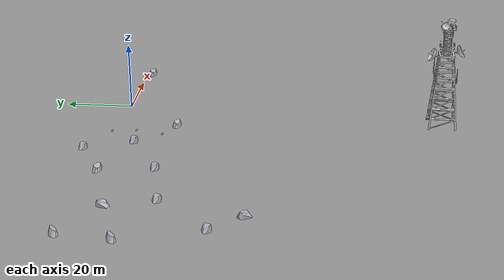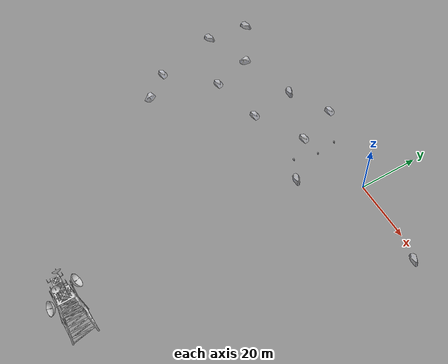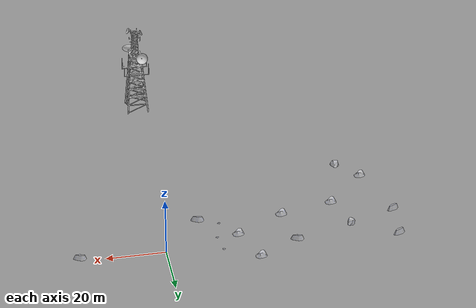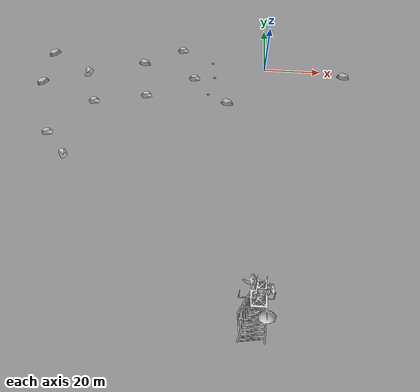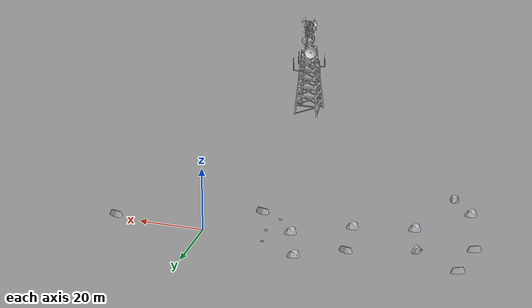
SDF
<sdf version="1.6">
 <world name="moon">
  <scene><background>0 0 0 255</background><ambient>0.4 0.4 0.4 1</ambient><shadows>1</shadows></scene>
  <include><uri>model://sun</uri></include>
  <physics name="default_physics" default="0" type="ode">
   <max_step_size>0.01</max_step_size>
   <real_time_factor>1</real_time_factor>
   <real_time_update_rate>100</real_time_update_rate>
  </physics>
  <gravity>0 0 -1.622</gravity>
  <magnetic_field>6e-06 2.3e-05 -4.2e-05</magnetic_field>
  <atmosphere type="adiabatic"/>
  <spherical_coordinates>
   <surface_model>EARTH_WGS84</surface_model>
   <latitude_deg>0</latitude_deg>
   <longitude_deg>0</longitude_deg>
   <elevation>0</elevation>
   <heading_deg>0</heading_deg>
  </spherical_coordinates>
  <include><name>rock_1_0</name><uri>model://rock_1</uri><pose>-20 -13 0.1 0 0 0 1</pose></include>
  <include><name>rock_1_1</name><uri>model://rock_1</uri><pose>-18 -5 0.1 0 0 0 1</pose></include>
  <include><name>rock_1_2</name><uri>model://rock_1</uri><pose>-19 2 0.1 0 0 0 1</pose></include>
  <include><name>rock_4_0</name><uri>model://rock_4</uri><pose>-25.5 -6 0 0 0 0 1</pose></include>
  <include><name>rock_4_1</name><uri>model://rock_4</uri><pose>-42 -15 -0.1 0 0 0 1</pose></include>
  <include><name>rock_4_2</name><uri>model://rock_4</uri><pose>-60.0708 -18.8017 0 0 -0 0</pose></include>
  <include><name>rock_4_3</name><uri>model://rock_4</uri><pose>-73.7845 -33.3042 -0.1 0 0 0</pose></include>
  <include><name>rock_4_4</name><uri>model://rock_4</uri><pose>-64.0217 -5.00256 0 0 0 -2.0233</pose></include>
  <include><name>rock_4_5</name><uri>model://rock_4</uri><pose>-30.6179 7.59373 -0.1 0 0 0</pose></include>
  <include>
   <name>rock_4_6</name>
   <uri>model://rock_4</uri>
   <pose>-66.8079 -41.3161 -0.1 0 0 -1.32203</pose>
  </include>
  <include><name>rock_2_0</name><uri>model://rock_2</uri><pose>28 -2 -0.1 0 0 0 1</pose></include>
  <include><name>rock_2_1</name><uri>model://rock_2</uri><pose>-13.5 -16.7 -0.1 0 0 0 1</pose></include>
  <include><name>rock_2_2</name><uri>model://rock_2</uri><pose>-44.3403 0.30004 -0.1 0 -0 0</pose></include>
  <include>
   <name>rock_2_3</name>
   <uri>model://rock_2</uri>
   <pose>-78.2724 3.00211 -0.1 0 -0 0.74589</pose>
  </include>
  <include>
   <name>rock_2_4</name>
   <uri>model://rock_2</uri>
   <pose>-79.7882 -11.3205 -0.1 0 -0 0.74589</pose>
  </include>
  <include><name>radio_tower_0</name><uri>model://radio_tower</uri><pose>-4 -95 -1 0 0 0 1</pose></include>
 </world>
</sdf>

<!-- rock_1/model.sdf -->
<sdf version="1.6">
  <model name="rock1">
    <pose>0 0 0.4 0 0 0</pose>
    <static>true</static>
    <link name="link">
      <collision name='collision'>
        <pose frame=''>.02 -.05 .1 0 1.55 -.15</pose>
        <geometry>
          <cylinder>
            <radius>.22</radius>
            <length>.72</length>
          </cylinder>
        </geometry>
      </collision>
      <visual name="visual">
        <geometry>
          <mesh>
            <uri>model://rock_1/meshes/model.dae</uri>
          </mesh>
        </geometry>
        <material>
          <script>
            <uri>model://rock_1/materials/scripts</uri>
            <uri>model://rock_1/materials/textures</uri>
            <name>rock/1</name>
          </script>
        </material>
      </visual>
    </link>
  </model>
</sdf>

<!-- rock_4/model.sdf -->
<sdf version="1.6">
  <model name="rock4">
    <pose>0 0 0.4 0 0 0</pose>
    <static>true</static>
    <link name="link">
	    <collision name='collision'>
        <pose frame=''>.2 .3 .3 0 1.55 0</pose>
        <geometry>
          <cylinder>
            <radius>1.1</radius>
            <length>2.8</length>
          </cylinder>
        </geometry>
      </collision>
      <visual name="visual">
        <geometry>
          <mesh>
            <uri>model://rock_4/meshes/model.dae</uri>
          </mesh>
        </geometry>
        <material>
          <script>
            <uri>model://rock_4/materials/scripts</uri>
            <uri>model://rock_4/materials/textures</uri>
            <name>rock/4</name>
          </script>
        </material>
      </visual>
    </link>
  </model>
</sdf>

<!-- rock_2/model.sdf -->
<sdf version="1.6">
  <model name="rock2">
    <pose>0 0 0.4 0 0 0</pose>
    <static>true</static>
    <link name="link">
      <collision name='collision1'>
        <pose frame=''>-.3 .4 .3 0 1.55 -.15</pose>
        <geometry>
          <cylinder>
            <radius>1.0</radius>
            <length>2.0</length>
          </cylinder>
        </geometry>
      </collision>
      <collision name="collision2">
        <pose frame=''>1.2 .1 .3 0 1.55 -.15</pose>
        <geometry>
          <cylinder>
            <radius>.7</radius>
            <length>1.8</length>
          </cylinder>
        </geometry>
      </collision>
      <visual name="visual">
        <geometry>
          <mesh>
            <uri>model://rock_2/meshes/model.dae</uri>
          </mesh>
        </geometry>
        <material>
          <script>
            <uri>model://rock_2/materials/scripts</uri>
            <uri>model://rock_2/materials/textures</uri>
            <name>rock/2</name>
          </script>
        </material>
      </visual>
    </link>
  </model>
</sdf>

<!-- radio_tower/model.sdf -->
<sdf version='1.6'>
  <model name='radio_tower'>
    <link name='link'>
      <self_collide>0</self_collide>
      <enable_wind>0</enable_wind>
      <kinematic>0</kinematic>
      <pose frame=''>0 0 0 0 -0 0</pose>
      <visual name='visual'>
        <geometry>
          <mesh>
            <uri>model://radio_tower/meshes/radio_tower.dae</uri>
          </mesh>
        </geometry>
        <pose frame=''>0 0 0 0 -0 0</pose>
        <transparency>0</transparency>
        <cast_shadows>1</cast_shadows>
      </visual>
      <collision name='collision'>
        <laser_retro>0</laser_retro>
        <max_contacts>10</max_contacts>
        <pose frame=''>0 0 0 0 -0 0</pose>
        <geometry>
          <mesh>
            <uri>model://radio_tower/meshes/radio_tower.dae</uri>
            <scale>1 1 1</scale>
          </mesh>
        </geometry>
        <surface>
          <friction>
            <ode>
              <mu>1</mu>
              <mu2>1</mu2>
              <fdir1>0 0 0</fdir1>
              <slip1>0</slip1>
              <slip2>0</slip2>
            </ode>
            <torsional>
              <coefficient>1</coefficient>
              <patch_radius>0</patch_radius>
              <surface_radius>0</surface_radius>
              <use_patch_radius>1</use_patch_radius>
              <ode>
                <slip>0</slip>
              </ode>
            </torsional>
          </friction>
          <bounce>
            <restitution_coefficient>0</restitution_coefficient>
            <threshold>1e+06</threshold>
          </bounce>
          <contact>
            <collide_without_contact>0</collide_without_contact>
            <collide_without_contact_bitmask>1</collide_without_contact_bitmask>
            <collide_bitmask>1</collide_bitmask>
            <ode>
              <soft_cfm>0</soft_cfm>
              <soft_erp>0.2</soft_erp>
              <kp>1e+13</kp>
              <kd>1</kd>
              <max_vel>0.01</max_vel>
              <min_depth>0</min_depth>
            </ode>
            <bullet>
              <split_impulse>1</split_impulse>
              <split_impulse_penetration_threshold>-0.01</split_impulse_penetration_threshold>
              <soft_cfm>0</soft_cfm>
              <soft_erp>0.2</soft_erp>
              <kp>1e+13</kp>
              <kd>1</kd>
            </bullet>
          </contact>
        </surface>
      </collision>
    </link>
    <static>1</static>
    <allow_auto_disable>1</allow_auto_disable>
  </model>
</sdf>
